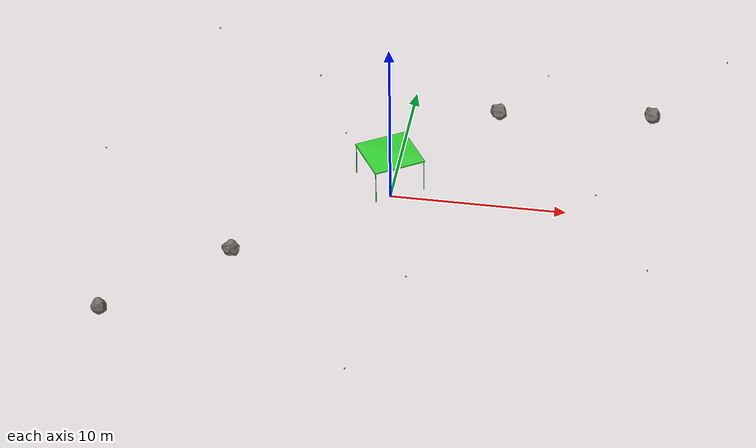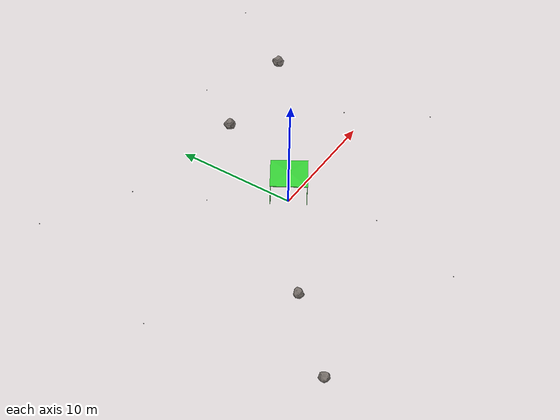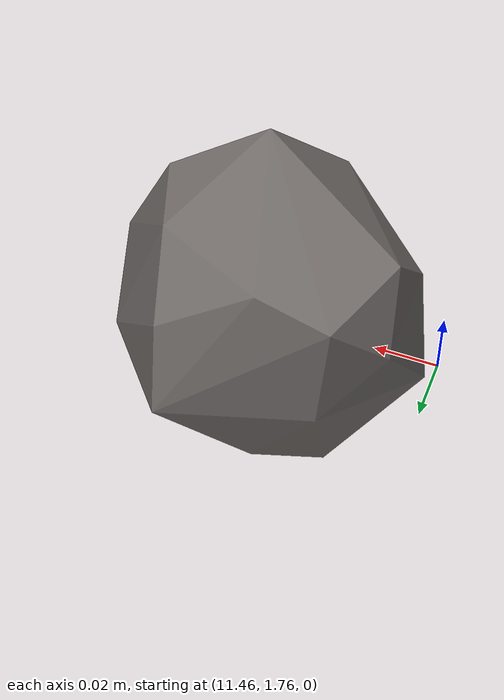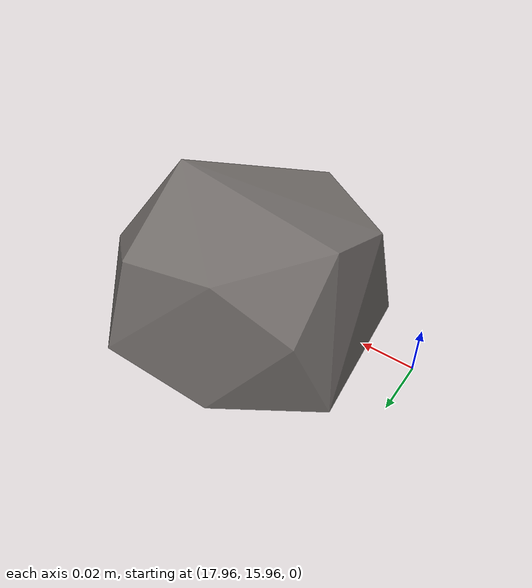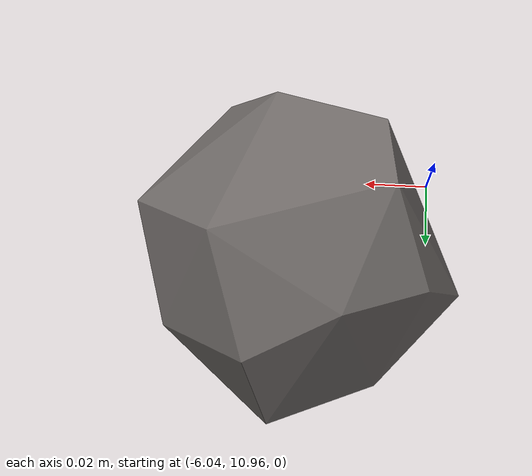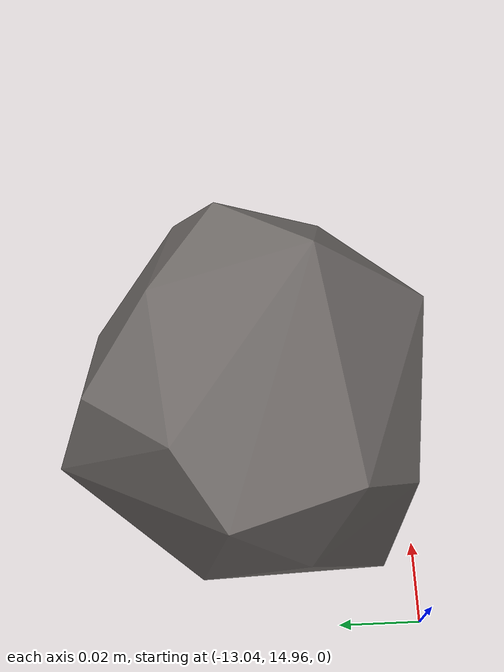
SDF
<sdf version="1.9">
 <world name="terrain_tent_sunset">
  <physics type="ode">
   <max_step_size>0.001</max_step_size>
   <real_time_factor>1.0</real_time_factor>
   <real_time_update_rate>1000</real_time_update_rate>
  </physics>
  <plugin filename="gz-sim-physics-system" name="gz::sim::systems::Physics"/>
  <plugin filename="gz-sim-sensors-system" name="gz::sim::systems::Sensors">
   <render_engine>ogre2</render_engine>
  </plugin>
  <plugin filename="gz-sim-user-commands-system" name="gz::sim::systems::UserCommands"/>
  <plugin filename="gz-sim-scene-broadcaster-system" name="gz::sim::systems::SceneBroadcaster"/>
  <plugin filename="gz-sim-imu-system" name="gz::sim::systems::Imu"/>
  <gravity>0 0 -9.8</gravity>
  <magnetic_field>6e-06 2.3e-05 -4.2e-05</magnetic_field>
  <atmosphere type="adiabatic"/>
  <scene>
   <grid>false</grid>
   <ambient>0.42 0.30 0.22 1</ambient>
   <background>0.95 0.58 0.34 1</background>
   <shadows>true</shadows>
   <sky><clouds><speed>5</speed></clouds></sky>
  </scene>
  <light name="sunUTC" type="directional">
   <pose>0 0 500 0 -0 0</pose>
   <intensity>1.35</intensity>
   <direction>-0.22 0.18 -0.28</direction>
   <diffuse>1.00 0.74 0.46 1</diffuse>
   <specular>0.55 0.40 0.28 1</specular>
   <attenuation><range>2000</range><linear>0</linear><constant>1</constant><quadratic>0</quadratic></attenuation>
  </light>
  <spherical_coordinates>
   <surface_model>EARTH_WGS84</surface_model>
   <world_frame_orientation>ENU</world_frame_orientation>
   <latitude_deg>47.397971057728974</latitude_deg>
   <longitude_deg>8.546163739800146</longitude_deg>
   <elevation>0</elevation>
  </spherical_coordinates>
  <frame name="dataset_anchor"><pose>15.19 -197.69 2.29 0 0 0</pose></frame>
  <include>
   <name>tent_target</name>
   <pose relative_to="dataset_anchor">0 0 0 0 0 0.55</pose>
   <uri>model://tent</uri>
   <static>true</static>
  </include>
  <include>
   <name>falling_rock_1</name>
   <pose relative_to="dataset_anchor">5.0 9.0 0.05 0 0 0.70</pose>
   <uri>model://Falling Rock 2</uri>
   <static>true</static>
  </include>
  <include>
   <name>falling_rock_2</name>
   <pose relative_to="dataset_anchor">-8.0 -6.0 0.05 0 0 1.60</pose>
   <uri>model://Falling Rock 2</uri>
   <static>true</static>
  </include>
  <include>
   <name>falling_rock_3</name>
   <pose relative_to="dataset_anchor">14.0 10.0 0.05 0 0 0.30</pose>
   <uri>model://Falling Rock 2</uri>
   <static>true</static>
  </include>
  <include>
   <name>falling_rock_4</name>
   <pose relative_to="dataset_anchor">-14.0 -12.0 0.05 0 0 2.40</pose>
   <uri>model://Falling Rock 2</uri>
   <static>true</static>
  </include>
  <include>
   <name>small_rock_1</name>
   <pose relative_to="dataset_anchor">2.0 -7.0 0.05 0 0 0.20</pose>
   <uri>model://Small Rock Fall</uri>
   <static>true</static>
  </include>
  <include>
   <name>small_rock_2</name>
   <pose relative_to="dataset_anchor">-3.5 5.5 0.05 0 0 2.00</pose>
   <uri>model://Small Rock Fall</uri>
   <static>true</static>
  </include>
  <include>
   <name>small_rock_3</name>
   <pose relative_to="dataset_anchor">11.5 1.8 0.05 0 0 0.50</pose>
   <uri>model://Small Rock Fall</uri>
   <static>true</static>
  </include>
  <include>
   <name>small_rock_4</name>
   <pose relative_to="dataset_anchor">-13.0 15.0 0.05 0 0 1.10</pose>
   <uri>model://Small Rock Fall</uri>
   <static>true</static>
  </include>
  <include>
   <name>small_rock_5</name>
   <pose relative_to="dataset_anchor">7.5 13.0 0.05 0 0 0.60</pose>
   <uri>model://Small Rock Fall</uri>
   <static>true</static>
  </include>
  <include>
   <name>small_rock_6</name>
   <pose relative_to="dataset_anchor">-6.0 11.0 0.05 0 0 2.20</pose>
   <uri>model://Small Rock Fall</uri>
   <static>true</static>
  </include>
  <include>
   <name>small_rock_7</name>
   <pose relative_to="dataset_anchor">15.0 -4.5 0.05 0 0 1.40</pose>
   <uri>model://Small Rock Fall</uri>
   <static>true</static>
  </include>
  <include>
   <name>small_rock_8</name>
   <pose relative_to="dataset_anchor">-17.0 2.0 0.05 0 0 2.80</pose>
   <uri>model://Small Rock Fall</uri>
   <static>true</static>
  </include>
  <include>
   <name>small_rock_9</name>
   <pose relative_to="dataset_anchor">0.0 -15.0 0.05 0 0 0.90</pose>
   <uri>model://Small Rock Fall</uri>
   <static>true</static>
  </include>
  <include>
   <name>small_rock_10</name>
   <pose relative_to="dataset_anchor">18.0 16.0 0.05 0 0 1.90</pose>
   <uri>model://Small Rock Fall</uri>
   <static>true</static>
  </include>
 </world>
</sdf>

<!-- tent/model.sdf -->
<sdf version="1.6">
  <model name="tent">
    <static>true</static>
    <link name="base_link">
      <visual name="visual">
        <geometry>
           <mesh>
            <uri>mesh/tent.dae</uri>
          </mesh>
        </geometry>
        <material>
          <ambient>0.2 0.8 0.2 1.0</ambient>
          <diffuse>0.2 0.8 0.2 1.0</diffuse>
          <specular>0.1 0.1 0.1 1.0</specular>
          <pbr>
            <metal>
              <albedo_map>mesh/tent.png</albedo_map>
            </metal>
          </pbr>
        </material>
      </visual>
      <collision name="collision">
        <pose>0 0 1.5 0 0 0</pose>
        <geometry>
          <box>
            <size>3.0 3.0 3.0</size>
          </box>
        </geometry>
      </collision>
    </link>
  </model>
</sdf>

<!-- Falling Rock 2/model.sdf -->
<sdf version="1.6">
  <model name="falling_rock2">
    <link name="base_link">
      <inertial>
        <pose>-0.014732 -0.014451 0.003710 0 0 0</pose>
        <mass>646.508</mass>
        <inertia>
          <ixx>49.62</ixx>
          <ixy>4.08</ixy>
          <ixz>-0.324</ixz>
          <iyy>46.472</iyy>
          <iyz>-3.926</iyz>
          <izz>51.062</izz>
        </inertia>
      </inertial>
      <collision name="collision">
        <geometry>
          <mesh>
            <uri>meshes/FallingRock02_Collider.dae</uri>
          </mesh>
        </geometry>
      </collision>

      <visual name="visual">
        <geometry>
          <mesh>
            <uri>meshes/FallingRock02.dae</uri>
          </mesh>
        </geometry>
        <!-- Keep material local-only to avoid unresolved model:// URIs -->
        <material>
          <ambient>0.38 0.35 0.33 1.0</ambient>
          <diffuse>0.45 0.42 0.40 1.0</diffuse>
          <specular>0.08 0.08 0.08 1.0</specular>
        </material>
      </visual>
    </link>
  </model>
</sdf>

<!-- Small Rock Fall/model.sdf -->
<sdf version="1.6">
  <model name="small_rock_fall">
    <static>true</static>
    <link name="base_link">
      <collision name="collision">
        <geometry>
          <mesh>
            <uri>meshes/FallingRock06.dae</uri>
            <scale>0.75 0.75 0.75</scale>
          </mesh>
        </geometry>
      </collision>
      <visual name="visual">
        <geometry>
          <mesh>
            <uri>meshes/FallingRock06.dae</uri>
            <scale>0.75 0.75 0.75</scale>
          </mesh>
        </geometry>
        <material>
          <ambient>0.36 0.34 0.33 1.0</ambient>
          <diffuse>0.43 0.41 0.40 1.0</diffuse>
          <specular>0.07 0.07 0.07 1.0</specular>
        </material>
      </visual>
    </link>
  </model>
</sdf>
